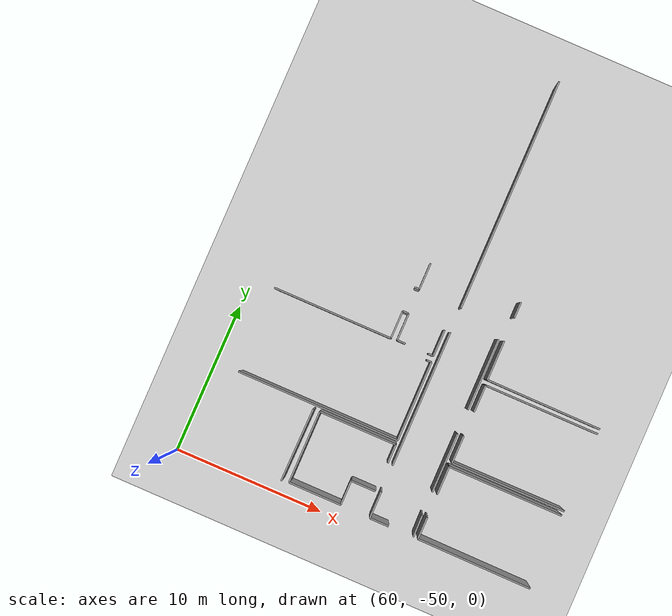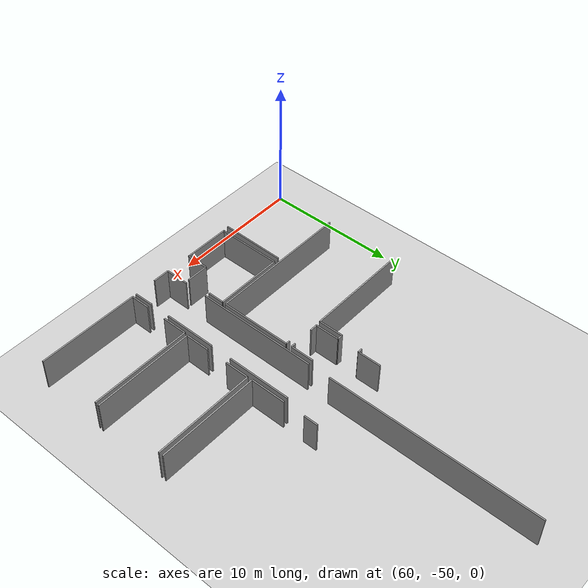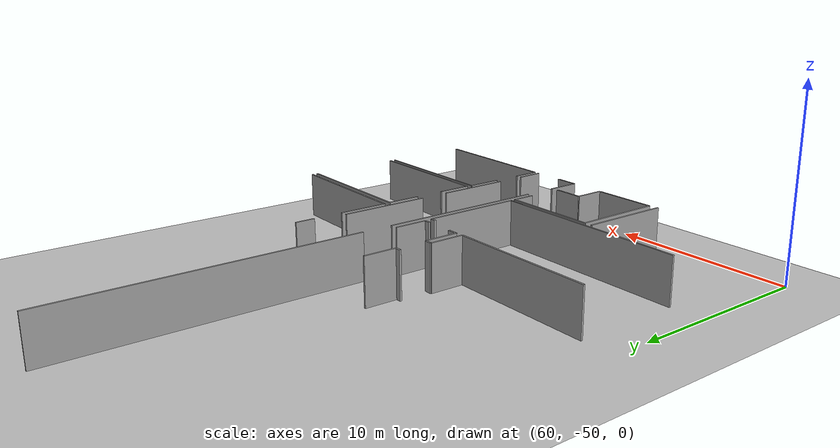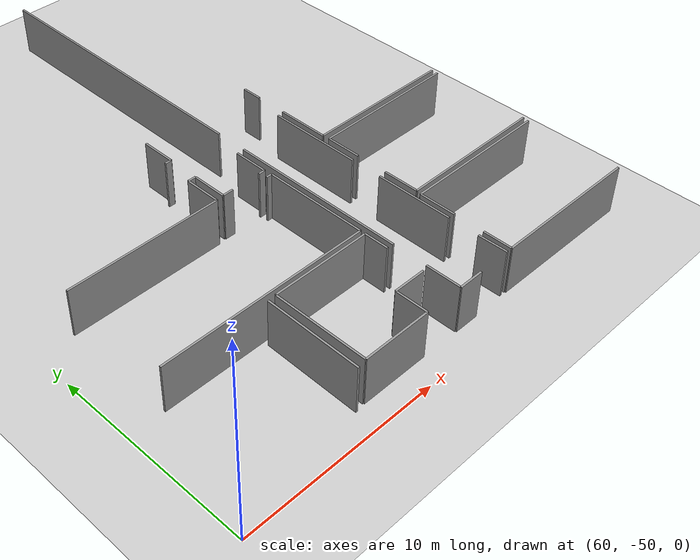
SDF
<sdf version="1.6">
 <world name="default">
  <model name="ground_plane">
   <static>1</static>
   <link name="link">
    <collision name="collision">
     <geometry><plane><normal>0 0 1</normal><size>100 100</size></plane></geometry>
     <surface><friction><ode><mu>100</mu><mu2>50</mu2></ode></friction></surface>
    </collision>
    <visual name="visual">
     <cast_shadows>0</cast_shadows>
     <geometry><plane><normal>0 0 1</normal><size>100 100</size></plane></geometry>
     <material>
      <script><uri>file://media/materials/scripts/gazebo.material</uri><name>Gazebo/Grey</name></script>
     </material>
    </visual>
   </link>
  </model>
  <model name="0510045904_A_40_1_102">
   <static>1</static>
   <link name="Wall_572">
    <collision name="Wall_572_Collision">
     <geometry><box><size>1.26880546422 0.1 2.5</size></box></geometry>
     <pose>0.634402732109 0 1.25 0 0 0</pose>
    </collision>
    <visual name="Wall_572_Visual">
     <pose>0.634402732109 0 1.25 0 0 0</pose>
     <geometry><box><size>1.26880546422 0.1 2.5</size></box></geometry>
     <material>
      <script><uri>file://media/materials/scripts/gazebo.material</uri><name>Gazebo/Grey</name></script>
      <ambient>1 1 1 1</ambient>
     </material>
    </visual>
    <pose>158.537712494 -111.246588038 0 0 0 3.14159265359</pose>
   </link>
   <link name="Wall_573">
    <collision name="Wall_573_Collision">
     <geometry><box><size>1.78780453743 0.1 2.5</size></box></geometry>
     <pose>0.893902268717 0 1.25 0 0 0</pose>
    </collision>
    <visual name="Wall_573_Visual">
     <pose>0.893902268717 0 1.25 0 0 0</pose>
     <geometry><box><size>1.78780453743 0.1 2.5</size></box></geometry>
     <material>
      <script><uri>file://media/materials/scripts/gazebo.material</uri><name>Gazebo/Grey</name></script>
      <ambient>1 1 1 1</ambient>
     </material>
    </visual>
    <pose>157.26890703 -111.246588038 0 0 0 1.57079632679</pose>
   </link>
   <link name="Wall_574">
    <collision name="Wall_574_Collision">
     <geometry><box><size>9.03043152589 0.1 2.5</size></box></geometry>
     <pose>4.51521576295 0 1.25 0 0 0</pose>
    </collision>
    <visual name="Wall_574_Visual">
     <pose>4.51521576295 0 1.25 0 0 0</pose>
     <geometry><box><size>9.03043152589 0.1 2.5</size></box></geometry>
     <material>
      <script><uri>file://media/materials/scripts/gazebo.material</uri><name>Gazebo/Grey</name></script>
      <ambient>1 1 1 1</ambient>
     </material>
    </visual>
    <pose>157.26890703 -107.679358107 0 0 0 1.57079632679</pose>
   </link>
   <link name="Wall_575">
    <collision name="Wall_575_Collision">
     <geometry><box><size>15.4244797948 0.1 2.5</size></box></geometry>
     <pose>7.71223989742 0 1.25 0 0 0</pose>
    </collision>
    <visual name="Wall_575_Visual">
     <pose>7.71223989742 0 1.25 0 0 0</pose>
     <geometry><box><size>15.4244797948 0.1 2.5</size></box></geometry>
     <material>
      <script><uri>file://media/materials/scripts/gazebo.material</uri><name>Gazebo/Grey</name></script>
      <ambient>1 1 1 1</ambient>
     </material>
    </visual>
    <pose>157.26890703 -97.003059657 0 0 0 1.57079632679</pose>
   </link>
   <link name="Wall_584">
    <collision name="Wall_584_Collision">
     <geometry><box><size>4.79134662993 0.1 2.5</size></box></geometry>
     <pose>2.39567331497 0 1.25 0 0 0</pose>
    </collision>
    <visual name="Wall_584_Visual">
     <pose>2.39567331497 0 1.25 0 0 0</pose>
     <geometry><box><size>4.79134662993 0.1 2.5</size></box></geometry>
     <material>
      <script><uri>file://media/materials/scripts/gazebo.material</uri><name>Gazebo/Grey</name></script>
      <ambient>1 1 1 1</ambient>
     </material>
    </visual>
    <pose>160.195767263 -97.8539235974 0 0 0 -1.57079632679</pose>
   </link>
   <link name="Wall_585">
    <collision name="Wall_585_Collision">
     <geometry><box><size>3.94022877601 0.1 2.5</size></box></geometry>
     <pose>1.97011438801 0 1.25 0 0 0</pose>
    </collision>
    <visual name="Wall_585_Visual">
     <pose>1.97011438801 0 1.25 0 0 0</pose>
     <geometry><box><size>3.94022877601 0.1 2.5</size></box></geometry>
     <material>
      <script><uri>file://media/materials/scripts/gazebo.material</uri><name>Gazebo/Grey</name></script>
      <ambient>1 1 1 1</ambient>
     </material>
    </visual>
    <pose>160.195767263 -104.266507548 0 0 0 -1.57079632679</pose>
   </link>
   <link name="Wall_586">
    <collision name="Wall_586_Collision">
     <geometry><box><size>1.47276986117 0.1 2.5</size></box></geometry>
     <pose>0.736384930585 0 1.25 0 0 0</pose>
    </collision>
    <visual name="Wall_586_Visual">
     <pose>0.736384930585 0 1.25 0 0 0</pose>
     <geometry><box><size>1.47276986117 0.1 2.5</size></box></geometry>
     <material>
      <script><uri>file://media/materials/scripts/gazebo.material</uri><name>Gazebo/Grey</name></script>
      <ambient>1 1 1 1</ambient>
     </material>
    </visual>
    <pose>160.195767263 -109.774143994 0 0 0 -1.54976131979</pose>
   </link>
   <link name="Wall_590">
    <collision name="Wall_590_Collision">
     <geometry><box><size>0.326532685008 0.1 2.5</size></box></geometry>
     <pose>0.163266342504 0 1.25 0 0 0</pose>
    </collision>
    <visual name="Wall_590_Visual">
     <pose>0.163266342504 0 1.25 0 0 0</pose>
     <geometry><box><size>0.326532685008 0.1 2.5</size></box></geometry>
     <material>
      <script><uri>file://media/materials/scripts/gazebo.material</uri><name>Gazebo/Grey</name></script>
      <ambient>1 1 1 1</ambient>
     </material>
    </visual>
    <pose>154.100067287 -96.9573552376 0 0 0 0.0</pose>
   </link>
   <link name="Wall_591">
    <collision name="Wall_591_Collision">
     <geometry><box><size>1.74717838689 0.1 2.5</size></box></geometry>
     <pose>0.873589193444 0 1.25 0 0 0</pose>
    </collision>
    <visual name="Wall_591_Visual">
     <pose>0.873589193444 0 1.25 0 0 0</pose>
     <geometry><box><size>1.74717838689 0.1 2.5</size></box></geometry>
     <material>
      <script><uri>file://media/materials/scripts/gazebo.material</uri><name>Gazebo/Grey</name></script>
      <ambient>1 1 1 1</ambient>
     </material>
    </visual>
    <pose>154.426599972 -96.9573552376 0 0 0 1.57079632679</pose>
   </link>
   <link name="Wall_594">
    <collision name="Wall_594_Collision">
     <geometry><box><size>1.76012797237 0.1 2.5</size></box></geometry>
     <pose>0.880063986187 0 1.25 0 0 0</pose>
    </collision>
    <visual name="Wall_594_Visual">
     <pose>0.880063986187 0 1.25 0 0 0</pose>
     <geometry><box><size>1.76012797237 0.1 2.5</size></box></geometry>
     <material>
      <script><uri>file://media/materials/scripts/gazebo.material</uri><name>Gazebo/Grey</name></script>
      <ambient>1 1 1 1</ambient>
     </material>
    </visual>
    <pose>156.883974253 -98.659337032 0 0 0 -1.57079632679</pose>
   </link>
   <link name="Wall_595">
    <collision name="Wall_595_Collision">
     <geometry><box><size>0.338212703289 0.1 2.5</size></box></geometry>
     <pose>0.169106351645 0 1.25 0 0 0</pose>
    </collision>
    <visual name="Wall_595_Visual">
     <pose>0.169106351645 0 1.25 0 0 0</pose>
     <geometry><box><size>0.338212703289 0.1 2.5</size></box></geometry>
     <material>
      <script><uri>file://media/materials/scripts/gazebo.material</uri><name>Gazebo/Grey</name></script>
      <ambient>1 1 1 1</ambient>
     </material>
    </visual>
    <pose>156.883974253 -100.419465004 0 0 0 3.14159265359</pose>
   </link>
   <link name="Wall_596">
    <collision name="Wall_596_Collision">
     <geometry><box><size>0.558609569998 0.1 2.5</size></box></geometry>
     <pose>0.279304784999 0 1.25 0 0 0</pose>
    </collision>
    <visual name="Wall_596_Visual">
     <pose>0.279304784999 0 1.25 0 0 0</pose>
     <geometry><box><size>0.558609569998 0.1 2.5</size></box></geometry>
     <material>
      <script><uri>file://media/materials/scripts/gazebo.material</uri><name>Gazebo/Grey</name></script>
      <ambient>1 1 1 1</ambient>
     </material>
    </visual>
    <pose>154.980385187 -100.419465004 0 0 0 3.14159265359</pose>
   </link>
   <link name="Wall_597">
    <collision name="Wall_597_Collision">
     <geometry><box><size>1.80151586324 0.1 2.5</size></box></geometry>
     <pose>0.900757931621 0 1.25 0 0 0</pose>
    </collision>
    <visual name="Wall_597_Visual">
     <pose>0.900757931621 0 1.25 0 0 0</pose>
     <geometry><box><size>1.80151586324 0.1 2.5</size></box></geometry>
     <material>
      <script><uri>file://media/materials/scripts/gazebo.material</uri><name>Gazebo/Grey</name></script>
      <ambient>1 1 1 1</ambient>
     </material>
    </visual>
    <pose>154.421775617 -100.419465004 0 0 0 1.57079632679</pose>
   </link>
   <link name="Wall_598">
    <collision name="Wall_598_Collision">
     <geometry><box><size>0.406261505453 0.1 2.5</size></box></geometry>
     <pose>0.203130752726 0 1.25 0 0 0</pose>
    </collision>
    <visual name="Wall_598_Visual">
     <pose>0.203130752726 0 1.25 0 0 0</pose>
     <geometry><box><size>0.406261505453 0.1 2.5</size></box></geometry>
     <material>
      <script><uri>file://media/materials/scripts/gazebo.material</uri><name>Gazebo/Grey</name></script>
      <ambient>1 1 1 1</ambient>
     </material>
    </visual>
    <pose>154.421775617 -98.6179491411 0 0 0 3.14159265359</pose>
   </link>
   <link name="Wall_599">
    <collision name="Wall_599_Collision">
     <geometry><box><size>1.85356811863 0.1 2.5</size></box></geometry>
     <pose>0.926784059314 0 1.25 0 0 0</pose>
    </collision>
    <visual name="Wall_599_Visual">
     <pose>0.926784059314 0 1.25 0 0 0</pose>
     <geometry><box><size>1.85356811863 0.1 2.5</size></box></geometry>
     <material>
      <script><uri>file://media/materials/scripts/gazebo.material</uri><name>Gazebo/Grey</name></script>
      <ambient>1 1 1 1</ambient>
     </material>
    </visual>
    <pose>154.015514111 -98.6179491411 0 0 0 -1.57079632679</pose>
   </link>
   <link name="Wall_600">
    <collision name="Wall_600_Collision">
     <geometry><box><size>7.92159154573 0.1 2.5</size></box></geometry>
     <pose>3.96079577286 0 1.25 0 0 0</pose>
    </collision>
    <visual name="Wall_600_Visual">
     <pose>3.96079577286 0 1.25 0 0 0</pose>
     <geometry><box><size>7.92159154573 0.1 2.5</size></box></geometry>
     <material>
      <script><uri>file://media/materials/scripts/gazebo.material</uri><name>Gazebo/Grey</name></script>
      <ambient>1 1 1 1</ambient>
     </material>
    </visual>
    <pose>154.015514111 -100.47151726 0 0 0 3.14152854692</pose>
   </link>
   <link name="Wall_601">
    <collision name="Wall_601_Collision">
     <geometry><box><size>10.8101108332 0.1 2.5</size></box></geometry>
     <pose>5.40505541661 0 1.25 0 0 0</pose>
    </collision>
    <visual name="Wall_601_Visual">
     <pose>5.40505541661 0 1.25 0 0 0</pose>
     <geometry><box><size>10.8101108332 0.1 2.5</size></box></geometry>
     <material>
      <script><uri>file://media/materials/scripts/gazebo.material</uri><name>Gazebo/Grey</name></script>
      <ambient>1 1 1 1</ambient>
     </material>
    </visual>
    <pose>156.931456067 -106.143435703 0 0 0 3.14159265359</pose>
   </link>
   <link name="Wall_604">
    <collision name="Wall_604_Collision">
     <geometry><box><size>0.306473523176 0.1 2.5</size></box></geometry>
     <pose>0.153236761588 0 1.25 0 0 0</pose>
    </collision>
    <visual name="Wall_604_Visual">
     <pose>0.153236761588 0 1.25 0 0 0</pose>
     <geometry><box><size>0.306473523176 0.1 2.5</size></box></geometry>
     <material>
      <script><uri>file://media/materials/scripts/gazebo.material</uri><name>Gazebo/Grey</name></script>
      <ambient>1 1 1 1</ambient>
     </material>
    </visual>
    <pose>156.618888621 -100.828265644 0 0 0 0.0</pose>
   </link>
   <link name="Wall_605">
    <collision name="Wall_605_Collision">
     <geometry><box><size>5.31517355191 0.1 2.5</size></box></geometry>
     <pose>2.65758677596 0 1.25 0 0 0</pose>
    </collision>
    <visual name="Wall_605_Visual">
     <pose>2.65758677596 0 1.25 0 0 0</pose>
     <geometry><box><size>5.31517355191 0.1 2.5</size></box></geometry>
     <material>
      <script><uri>file://media/materials/scripts/gazebo.material</uri><name>Gazebo/Grey</name></script>
      <ambient>1 1 1 1</ambient>
     </material>
    </visual>
    <pose>156.925362144 -100.828265644 0 0 0 -1.56964981223</pose>
   </link>
   <link name="Wall_606">
    <collision name="Wall_606_Collision">
     <geometry><box><size>2.62775019996 0.1 2.5</size></box></geometry>
     <pose>1.31387509998 0 1.25 0 0 0</pose>
    </collision>
    <visual name="Wall_606_Visual">
     <pose>1.31387509998 0 1.25 0 0 0</pose>
     <geometry><box><size>2.62775019996 0.1 2.5</size></box></geometry>
     <material>
      <script><uri>file://media/materials/scripts/gazebo.material</uri><name>Gazebo/Grey</name></script>
      <ambient>1 1 1 1</ambient>
     </material>
    </visual>
    <pose>160.560640878 -100.445618089 0 0 0 1.57079632679</pose>
   </link>
   <link name="Wall_607">
    <collision name="Wall_607_Collision">
     <geometry><box><size>1.04104510772 0.1 2.5</size></box></geometry>
     <pose>0.520522553861 0 1.25 0 0 0</pose>
    </collision>
    <visual name="Wall_607_Visual">
     <pose>0.520522553861 0 1.25 0 0 0</pose>
     <geometry><box><size>1.04104510772 0.1 2.5</size></box></geometry>
     <material>
      <script><uri>file://media/materials/scripts/gazebo.material</uri><name>Gazebo/Grey</name></script>
      <ambient>1 1 1 1</ambient>
     </material>
    </visual>
    <pose>160.560640878 -96.2204984321 0 0 0 1.57079632679</pose>
   </link>
   <link name="Wall_609">
    <collision name="Wall_609_Collision">
     <geometry><box><size>7.65121584689 0.1 2.5</size></box></geometry>
     <pose>3.82560792344 0 1.25 0 0 0</pose>
    </collision>
    <visual name="Wall_609_Visual">
     <pose>3.82560792344 0 1.25 0 0 0</pose>
     <geometry><box><size>7.65121584689 0.1 2.5</size></box></geometry>
     <material>
      <script><uri>file://media/materials/scripts/gazebo.material</uri><name>Gazebo/Grey</name></script>
      <ambient>1 1 1 1</ambient>
     </material>
    </visual>
    <pose>168.211814592 -100.471009433 0 0 0 3.13827404499</pose>
   </link>
   <link name="Wall_610">
    <collision name="Wall_610_Collision">
     <geometry><box><size>1.83249330303 0.1 2.5</size></box></geometry>
     <pose>0.916246651517 0 1.25 0 0 0</pose>
    </collision>
    <visual name="Wall_610_Visual">
     <pose>0.916246651517 0 1.25 0 0 0</pose>
     <geometry><box><size>1.83249330303 0.1 2.5</size></box></geometry>
     <material>
      <script><uri>file://media/materials/scripts/gazebo.material</uri><name>Gazebo/Grey</name></script>
      <ambient>1 1 1 1</ambient>
     </material>
    </visual>
    <pose>160.596188759 -106.067515584 0 0 0 1.57079632679</pose>
   </link>
   <link name="Wall_611">
    <collision name="Wall_611_Collision">
     <geometry><box><size>1.81040283367 0.1 2.5</size></box></geometry>
     <pose>0.905201416837 0 1.25 0 0 0</pose>
    </collision>
    <visual name="Wall_611_Visual">
     <pose>0.905201416837 0 1.25 0 0 0</pose>
     <geometry><box><size>1.81040283367 0.1 2.5</size></box></geometry>
     <material>
      <script><uri>file://media/materials/scripts/gazebo.material</uri><name>Gazebo/Grey</name></script>
      <ambient>1 1 1 1</ambient>
     </material>
    </visual>
    <pose>160.596188759 -102.609468432 0 0 0 1.57079632679</pose>
   </link>
   <link name="Wall_612">
    <collision name="Wall_612_Collision">
     <geometry><box><size>7.60800842993 0.1 2.5</size></box></geometry>
     <pose>3.80400421496 0 1.25 0 0 0</pose>
    </collision>
    <visual name="Wall_612_Visual">
     <pose>3.80400421496 0 1.25 0 0 0</pose>
     <geometry><box><size>7.60800842993 0.1 2.5</size></box></geometry>
     <material>
      <script><uri>file://media/materials/scripts/gazebo.material</uri><name>Gazebo/Grey</name></script>
      <ambient>1 1 1 1</ambient>
     </material>
    </visual>
    <pose>160.596188759 -100.799065599 0 0 0 0.0</pose>
   </link>
   <link name="Wall_613">
    <collision name="Wall_613_Collision">
     <geometry><box><size>7.60807893945 0.1 2.5</size></box></geometry>
     <pose>3.80403946973 0 1.25 0 0 0</pose>
    </collision>
    <visual name="Wall_613_Visual">
     <pose>3.80403946973 0 1.25 0 0 0</pose>
     <geometry><box><size>7.60807893945 0.1 2.5</size></box></geometry>
     <material>
      <script><uri>file://media/materials/scripts/gazebo.material</uri><name>Gazebo/Grey</name></script>
      <ambient>1 1 1 1</ambient>
     </material>
    </visual>
    <pose>168.204197189 -106.03476075 0 0 0 -3.13728737031</pose>
   </link>
   <link name="Wall_615">
    <collision name="Wall_615_Collision">
     <geometry><box><size>7.63543108154 0.1 2.5</size></box></geometry>
     <pose>3.81771554077 0 1.25 0 0 0</pose>
    </collision>
    <visual name="Wall_615_Visual">
     <pose>3.81771554077 0 1.25 0 0 0</pose>
     <geometry><box><size>7.63543108154 0.1 2.5</size></box></geometry>
     <material>
      <script><uri>file://media/materials/scripts/gazebo.material</uri><name>Gazebo/Grey</name></script>
      <ambient>1 1 1 1</ambient>
     </material>
    </visual>
    <pose>168.16737974 -106.346058629 0 0 0 3.14159265359</pose>
   </link>
   <link name="Wall_616">
    <collision name="Wall_616_Collision">
     <geometry><box><size>1.88149859713 0.1 2.5</size></box></geometry>
     <pose>0.940749298564 0 1.25 0 0 0</pose>
    </collision>
    <visual name="Wall_616_Visual">
     <pose>0.940749298564 0 1.25 0 0 0</pose>
     <geometry><box><size>1.88149859713 0.1 2.5</size></box></geometry>
     <material>
      <script><uri>file://media/materials/scripts/gazebo.material</uri><name>Gazebo/Grey</name></script>
      <ambient>1 1 1 1</ambient>
     </material>
    </visual>
    <pose>160.531948659 -106.346058629 0 0 0 -1.57079632679</pose>
   </link>
   <link name="Wall_617">
    <collision name="Wall_617_Collision">
     <geometry><box><size>1.45060748791 0.1 2.5</size></box></geometry>
     <pose>0.725303743954 0 1.25 0 0 0</pose>
    </collision>
    <visual name="Wall_617_Visual">
     <pose>0.725303743954 0 1.25 0 0 0</pose>
     <geometry><box><size>1.45060748791 0.1 2.5</size></box></geometry>
     <material>
      <script><uri>file://media/materials/scripts/gazebo.material</uri><name>Gazebo/Grey</name></script>
      <ambient>1 1 1 1</ambient>
     </material>
    </visual>
    <pose>160.531948659 -109.786839666 0 0 0 -1.57079632679</pose>
   </link>
   <link name="Wall_618">
    <collision name="Wall_618_Collision">
     <geometry><box><size>7.6355603761 0.1 2.5</size></box></geometry>
     <pose>3.81778018805 0 1.25 0 0 0</pose>
    </collision>
    <visual name="Wall_618_Visual">
     <pose>3.81778018805 0 1.25 0 0 0</pose>
     <geometry><box><size>7.6355603761 0.1 2.5</size></box></geometry>
     <material>
      <script><uri>file://media/materials/scripts/gazebo.material</uri><name>Gazebo/Grey</name></script>
      <ambient>1 1 1 1</ambient>
     </material>
    </visual>
    <pose>160.531948659 -111.237447154 0 0 0 -0.00581949467755</pose>
   </link>
   <link name="Wall_619">
    <collision name="Wall_619_Collision">
     <geometry><box><size>1.63621821321 0.1 2.5</size></box></geometry>
     <pose>0.818109106606 0 1.25 0 0 0</pose>
    </collision>
    <visual name="Wall_619_Visual">
     <pose>0.818109106606 0 1.25 0 0 0</pose>
     <geometry><box><size>1.63621821321 0.1 2.5</size></box></geometry>
     <material>
      <script><uri>file://media/materials/scripts/gazebo.material</uri><name>Gazebo/Grey</name></script>
      <ambient>1 1 1 1</ambient>
     </material>
    </visual>
    <pose>155.282034354 -111.211801897 0 0 0 1.57079632679</pose>
   </link>
   <link name="Wall_620">
    <collision name="Wall_620_Collision">
     <geometry><box><size>1.65297650031 0.1 2.5</size></box></geometry>
     <pose>0.826488250156 0 1.25 0 0 0</pose>
    </collision>
    <visual name="Wall_620_Visual">
     <pose>0.826488250156 0 1.25 0 0 0</pose>
     <geometry><box><size>1.65297650031 0.1 2.5</size></box></geometry>
     <material>
      <script><uri>file://media/materials/scripts/gazebo.material</uri><name>Gazebo/Grey</name></script>
      <ambient>1 1 1 1</ambient>
     </material>
    </visual>
    <pose>155.282034354 -109.575583684 0 0 0 0.0</pose>
   </link>
   <link name="Wall_621">
    <collision name="Wall_621_Collision">
     <geometry><box><size>1.24417586045 0.1 2.5</size></box></geometry>
     <pose>0.622087930225 0 1.25 0 0 0</pose>
    </collision>
    <visual name="Wall_621_Visual">
     <pose>0.622087930225 0 1.25 0 0 0</pose>
     <geometry><box><size>1.24417586045 0.1 2.5</size></box></geometry>
     <material>
      <script><uri>file://media/materials/scripts/gazebo.material</uri><name>Gazebo/Grey</name></script>
      <ambient>1 1 1 1</ambient>
     </material>
    </visual>
    <pose>156.935010855 -107.657267637 0 0 0 1.57079632679</pose>
   </link>
   <link name="Wall_622">
    <collision name="Wall_622_Collision">
     <geometry><box><size>5.15393502355 0.1 2.5</size></box></geometry>
     <pose>2.57696751178 0 1.25 0 0 0</pose>
    </collision>
    <visual name="Wall_622_Visual">
     <pose>2.57696751178 0 1.25 0 0 0</pose>
     <geometry><box><size>5.15393502355 0.1 2.5</size></box></geometry>
     <material>
      <script><uri>file://media/materials/scripts/gazebo.material</uri><name>Gazebo/Grey</name></script>
      <ambient>1 1 1 1</ambient>
     </material>
    </visual>
    <pose>156.935010855 -106.413091777 0 0 0 3.14159265359</pose>
   </link>
   <link name="Wall_623">
    <collision name="Wall_623_Collision">
     <geometry><box><size>4.79896403316 0.1 2.5</size></box></geometry>
     <pose>2.39948201658 0 1.25 0 0 0</pose>
    </collision>
    <visual name="Wall_623_Visual">
     <pose>2.39948201658 0 1.25 0 0 0</pose>
     <geometry><box><size>4.79896403316 0.1 2.5</size></box></geometry>
     <material>
      <script><uri>file://media/materials/scripts/gazebo.material</uri><name>Gazebo/Grey</name></script>
      <ambient>1 1 1 1</ambient>
     </material>
    </visual>
    <pose>151.781075831 -106.413091777 0 0 0 -1.57079632679</pose>
   </link>
   <link name="Wall_624">
    <collision name="Wall_624_Collision">
     <geometry><box><size>3.50095853245 0.1 2.5</size></box></geometry>
     <pose>1.75047926622 0 1.25 0 0 0</pose>
    </collision>
    <visual name="Wall_624_Visual">
     <pose>1.75047926622 0 1.25 0 0 0</pose>
     <geometry><box><size>3.50095853245 0.1 2.5</size></box></geometry>
     <material>
      <script><uri>file://media/materials/scripts/gazebo.material</uri><name>Gazebo/Grey</name></script>
      <ambient>1 1 1 1</ambient>
     </material>
    </visual>
    <pose>151.781075831 -111.21205581 0 0 0 7.25268348077e-05</pose>
   </link>
   <link name="Wall_688">
    <collision name="Wall_688_Collision">
     <geometry><box><size>4.88183827041 0.1 2.5</size></box></geometry>
     <pose>2.4409191352 0 1.25 0 0 0</pose>
    </collision>
    <visual name="Wall_688_Visual">
     <pose>2.4409191352 0 1.25 0 0 0</pose>
     <geometry><box><size>4.88183827041 0.1 2.5</size></box></geometry>
     <material>
      <script><uri>file://media/materials/scripts/gazebo.material</uri><name>Gazebo/Grey</name></script>
      <ambient>1 1 1 1</ambient>
     </material>
    </visual>
    <pose>151.348153415 -106.434674419 0 0 0 -1.58281135328</pose>
   </link>
   <pose>-84.3 62.4479902751 0 0 0 0</pose>
  </model>
 </world>
</sdf>
